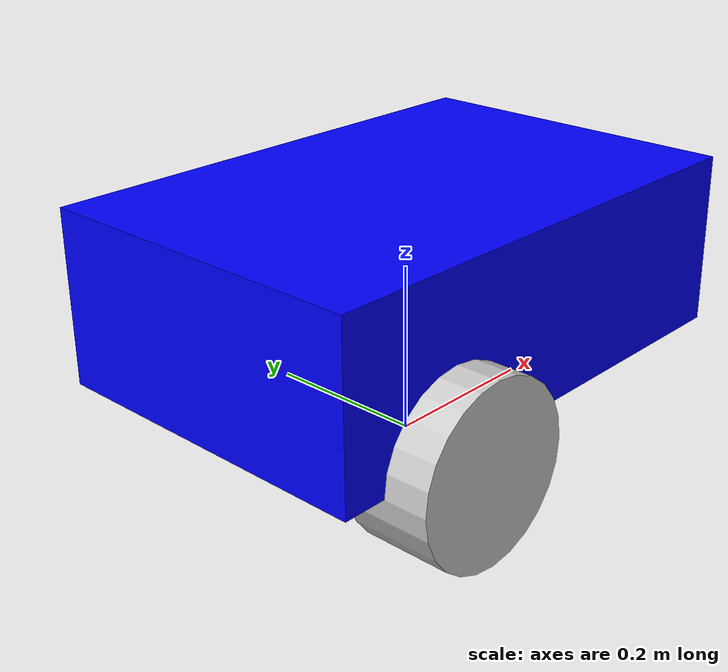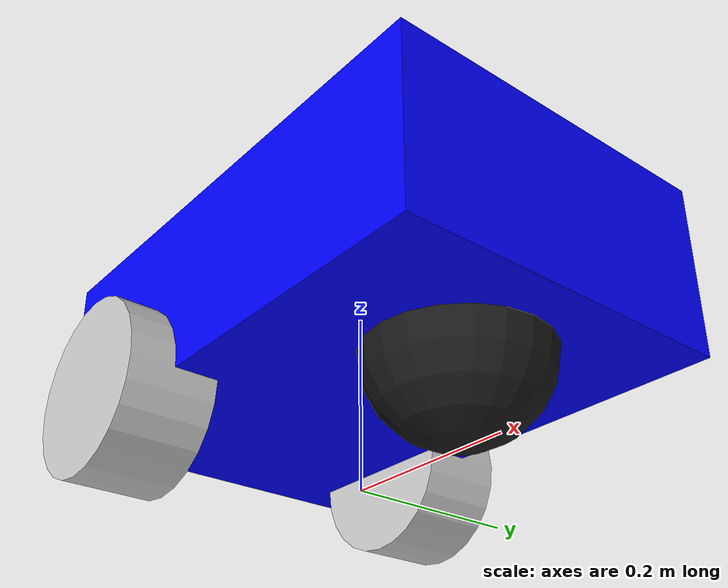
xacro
<?xml version="1.0"?>
<robot xmlns:xacro="http://www.ros.org/wiki/xacro">
<xacro:property name="chassis_l" value="0.6" />
<xacro:property name="chassis_w" value="0.4" />
<xacro:property name="chassis_h" value="0.2" />
<xacro:property name="lidar_r" value="0.1" />
<xacro:property name="lidar_l" value="0.1" />
<xacro:property name="wheel_l" value="0.1" />
<xacro:property name="wheel_r" value="0.1" />

    <material name="red">
        <color rgba="1 0 0 1"/>
    </material>

    <material name="blue">
        <color rgba="0 0 1 1"/>
    </material>

    <material name="green">
        <color rgba="0 1 0 1"/>
    </material>

    <material name="grey">
        <color rgba="0.8 0.8 0.8 1"/>
    </material>

    <material name="black">
        <color rgba="0.1 0.1 0.1 1"/>
    </material>

    <link name="base_footprint"/>
    <link name="base_link" />

    <link name="chassis_link">
        <visual>
            <geometry>
                <box size="${chassis_l} ${chassis_w} ${chassis_h}"/>
            </geometry>
            <origin xyz="0 0 ${chassis_h/2}"/>
            <material name="blue"/>
        </visual>
        <collision>
            <geometry>
                <box size="${chassis_l} ${chassis_w} ${chassis_h}"/>
            </geometry>
            <origin xyz="0 0 ${chassis_h/2}"/>
        </collision>
        <inertial>
            <mass value="2.0"/>
            <inertia ixx="0.1" ixy="0" ixz="0" iyy="0.1" iyz="0" izz="0.1"/>
        </inertial>
    </link>

    <gazebo reference="chassis_link">
        <material>Gazebo/Blue</material>
    </gazebo>

    <link name="left_wheel_link">
        <visual>
            <geometry>
                <cylinder length="${wheel_l}" radius="${wheel_r}"/>
            </geometry>
            <material name="grey"/>
            <origin rpy="1.57 0 0" xyz="0 0 0"/>
        </visual>
        <collision>
            <geometry>
                <cylinder length="${wheel_l}" radius="${wheel_r}"/>
            </geometry>
            <origin rpy="1.57 0 0" xyz="0 0 0"/>
        </collision>
        <inertial>
            <mass value="0.3"/>
            <inertia ixx="0.005" ixy="0" ixz="0" iyy="0.005" iyz="0" izz="0.005"/>
        </inertial>
    </link>

    <gazebo reference="left_wheel_link">
        <material>Gazebo/Grey</material>
    </gazebo>

    <link name="right_wheel_link">
        <visual>
            <geometry>
                <cylinder length="${wheel_l}" radius="${wheel_r}"/>
            </geometry>
            <material name="grey"/>
            <origin rpy="1.57 0 0" xyz="0 0 0"/>
        </visual>
        <collision>
            <geometry>
                <cylinder length="${wheel_l}" radius="${wheel_r}"/>
            </geometry>
            <origin rpy="1.57 0 0" xyz="0 0 0"/>
        </collision>
        <inertial>
            <mass value="0.3"/>
            <inertia ixx="0.005" ixy="0" ixz="0" iyy="0.005" iyz="0" izz="0.005"/>
        </inertial>
    </link>

    <gazebo reference="right_wheel_link">
        <material>Gazebo/Grey</material>
    </gazebo>

    <link name="caster_wheel_link">
        <visual>
            <geometry>
                <sphere radius="${wheel_r}"/>
            </geometry>
            <material name="black"/>
            <origin rpy="0 0 0" xyz="0 0 0"/>
        </visual>
        <collision>
            <geometry>
                <sphere radius="${wheel_r}"/>
            </geometry>
            <origin rpy="0 0 0" xyz="0 0 0"/>
        </collision>
        <inertial>
            <mass value="0.2"/>
            <inertia ixx="0.002" ixy="0" ixz="0" iyy="0.002" iyz="0" izz="0.002"/>
        </inertial>
    </link>

    <gazebo reference="caster_wheel_link">
        <material>Gazebo/Black</material>
        <mu1 value="0.001"/>
        <mu2 value="0.001"/>
    </gazebo>

    <!-- JOINTS -->

    <joint name="base_link_joint" type="fixed">
        <parent link="base_footprint" />
        <child link="base_link" />
        <origin xyz="0 0 0" rpy="0 0 0" />
    </joint>

    <joint name="chassis_base_joint" type="fixed">
        <parent link="base_link"/>
        <child link="chassis_link"/>
        <origin xyz="0 0 ${wheel_r}" rpy="0 0 0"/>
    </joint>

    <joint name="left_wheel_chassis_joint" type="continuous">
        <parent link="chassis_link"/>
        <child link="left_wheel_link"/>
        <origin xyz="-0.15 0.2 0" rpy="0 0 0"/>
        <axis xyz="0 1 0"/>
    </joint>

    <joint name="right_wheel_chassis_joint" type="continuous">
        <parent link="chassis_link"/>
        <child link="right_wheel_link"/>
        <origin xyz="-0.15 -0.2 0" rpy="3.14 0 0"/>
        <axis xyz="0 -1 0"/>
    </joint>

    <joint name="caster_wheel_chassis_joint" type="fixed">
        <parent link="chassis_link"/>
        <child link="caster_wheel_link"/>
        <origin xyz="0.15 0 0"/>
    </joint>

    <gazebo>
       <plugin name="gazebo_ros_p3d" filename="libgazebo_ros_p3d.so">
            <ros>
                <namespace>/</namespace>
                <remapping>odom:=odometry/unfiltered</remapping>
            </ros>
            <body_name>base_footprint</body_name>
            <frame_name>odom</frame_name>
            <update_rate>50.0</update_rate>
            <xyz_offset>0.0 0.0 0.0</xyz_offset>
            <rpy_offset>0.0 0.0 0.0</rpy_offset>
            <gaussian_noise>0.0</gaussian_noise>
       </plugin>
    </gazebo>

</robot>
